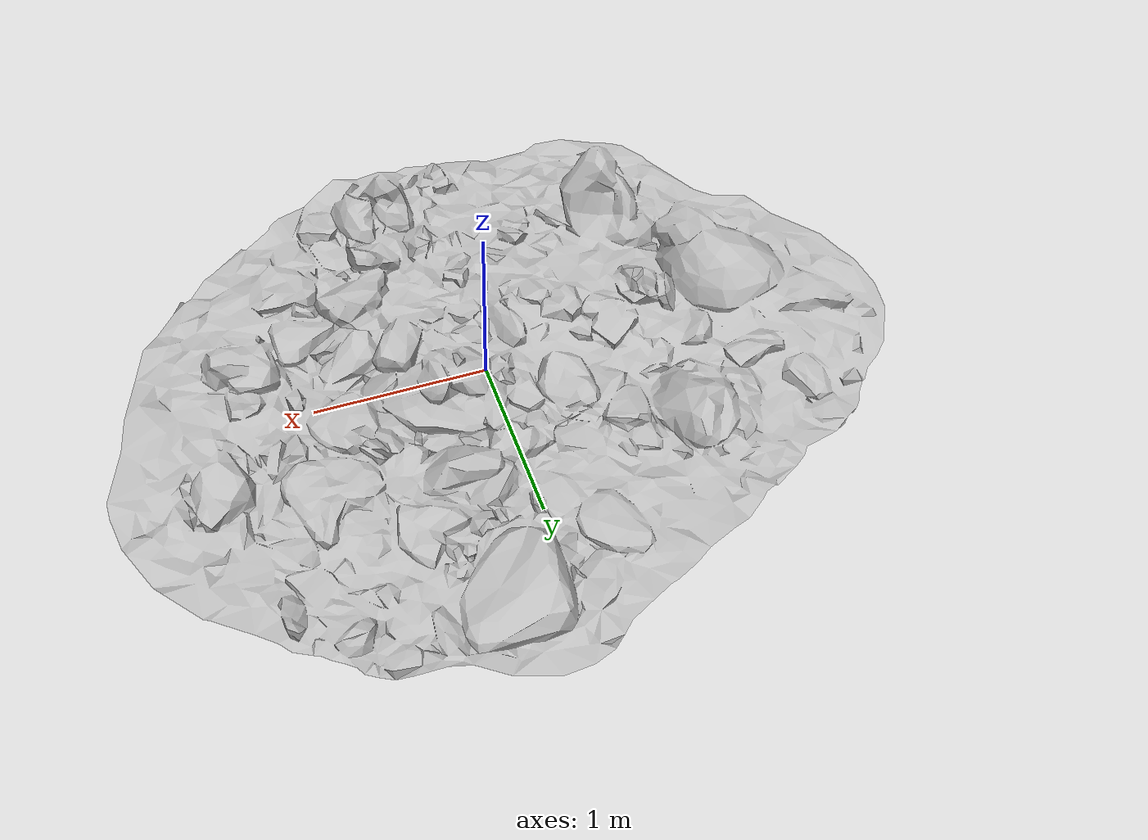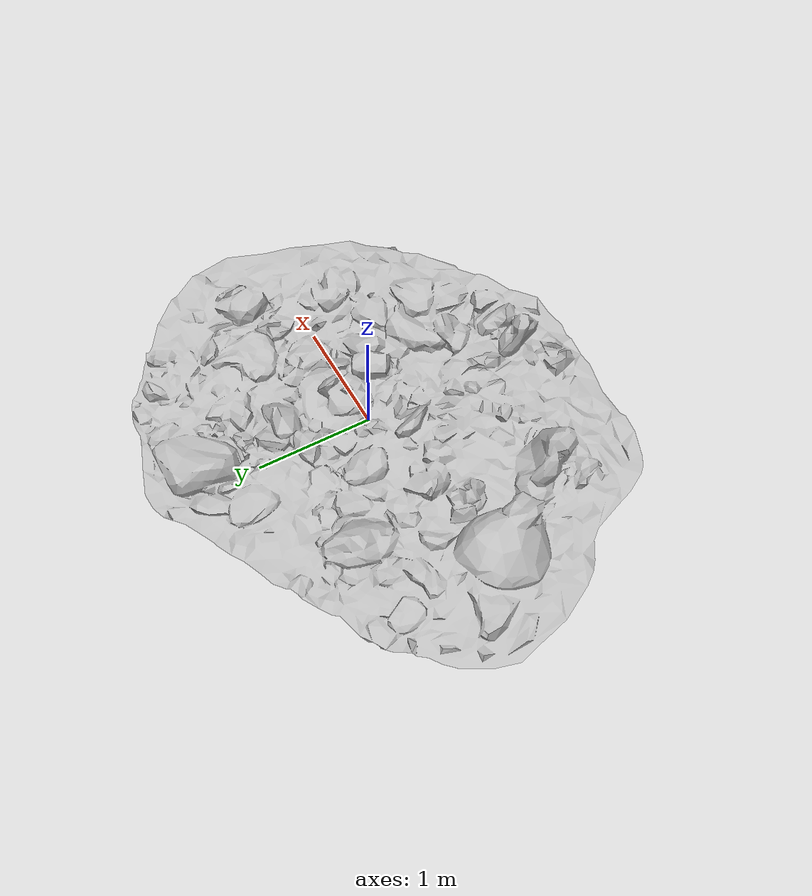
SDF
<?xml version="1.0" ?>
<sdf version="1.6">
    <model name="sand-rocks-small-01_2K_e14d6880-1c63-4176-a598-1c68a5f910bd">
        <static>true</static>
        <link name="link">
            <collision name="collision">
                <geometry>
                    <mesh>
                        <uri>model://sand/sand-rocks-small-01_2K_e14d6880-1c63-4176-a598-1c68a5f910bd/mesh/sand-rocks-small-01_2K_e14d6880-1c63-4176-a598-1c68a5f910bd_collision.dae</uri>
                    </mesh>
                </geometry>
            </collision>
            <visual name="visual">
                <geometry>
                    <mesh>
                        <uri>model://sand/sand-rocks-small-01_2K_e14d6880-1c63-4176-a598-1c68a5f910bd/mesh/sand-rocks-small-01_2K_e14d6880-1c63-4176-a598-1c68a5f910bd.dae</uri>
                    </mesh>
                </geometry>
                <material>
                    <script>
                        <uri>model://sand/sand-rocks-small-01_2K_e14d6880-1c63-4176-a598-1c68a5f910bd/materials/sand-rocks-small-01_2K_e14d6880-1c63-4176-a598-1c68a5f910bd.material</uri>
                        <name>sand-rocks-small-01_2K_e14d6880-1c63-4176-a598-1c68a5f910bd</name>
                    </script>
                </material>
            </visual>
        </link>
    </model>
</sdf>
